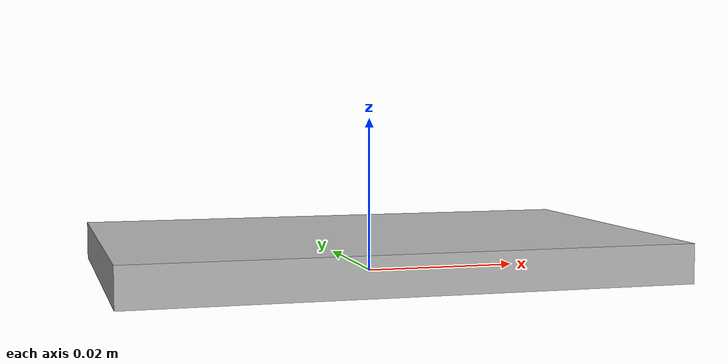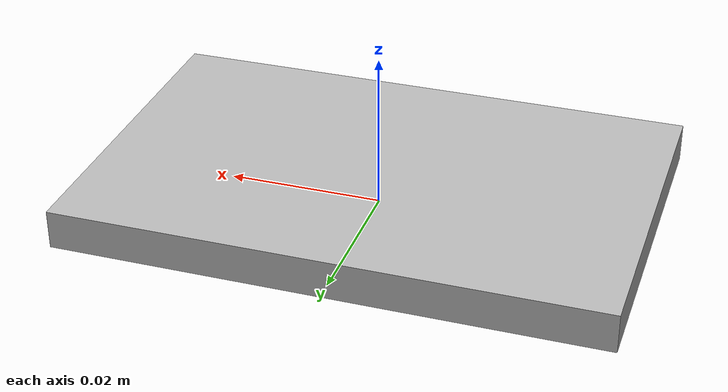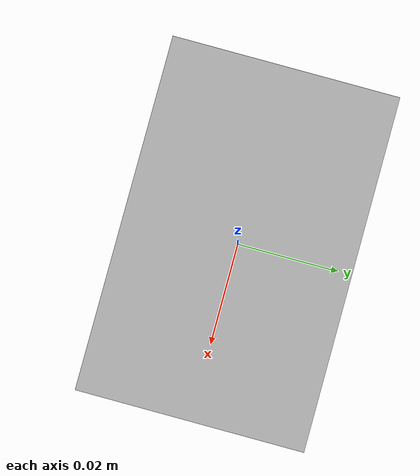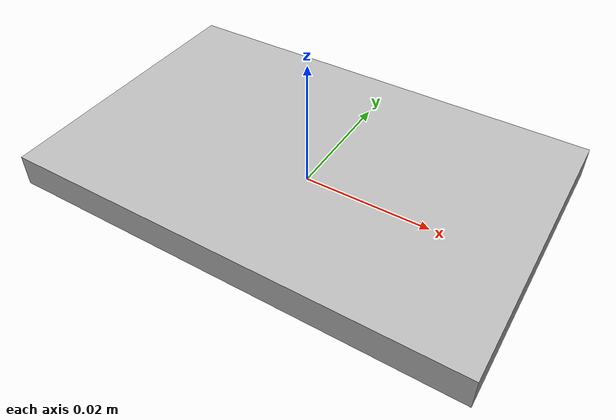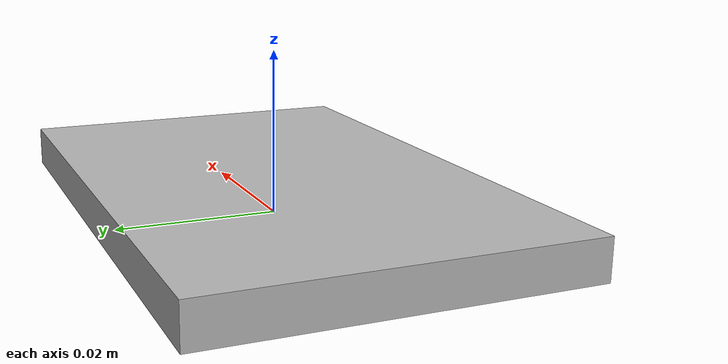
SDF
<?xml version="1.0" ?>
<sdf version="1.5">
  <model name="color_board">
    <static>false</static>
    <link name="Board">
      <pose frame=''>0 0 0.0025 0 0 0</pose>
      <inertial>
        <mass>2</mass>
        <inertia>
          <ixx>5</ixx>
          <ixy>0</ixy>
          <ixz>0</ixz>
          <iyy>5</iyy>
          <iyz>0</iyz>
          <izz>5</izz>
        </inertia>
      </inertial>

      <collision name="Board">
        <geometry>
          <box>
            <size>0.07 0.045 0.005</size>
          </box>
        </geometry>
        <surface>
          <contact>
            <poissons_ratio>10</poissons_ratio>
            <elastic_modulus>8.0e+10</elastic_modulus>
            <ode>
              <kp>100000</kp>
              <kd>100</kd>
              <max_vel>100.0</max_vel>
              <min_depth>0.001</min_depth>
            </ode>
          </contact>
          <friction>
            <torsional>
              <coefficient>1.0</coefficient>
              <use_patch_radius>0</use_patch_radius>
              <surface_radius>0.01</surface_radius>
            </torsional>
          </friction>
        </surface>
      </collision>

      <visual name="Board">
        <geometry>
          <box>
            <size>0.07 0.045 0.005</size>
          </box>
        </geometry>
        <material>
          <script>
            <uri>model://color_board/materials/scripts</uri>
            <uri>model://color_board/materials/texture</uri>
            <name>ColorBoard/Image</name>
          </script>
        </material>
      </visual>
    </link>

  </model>
</sdf>
